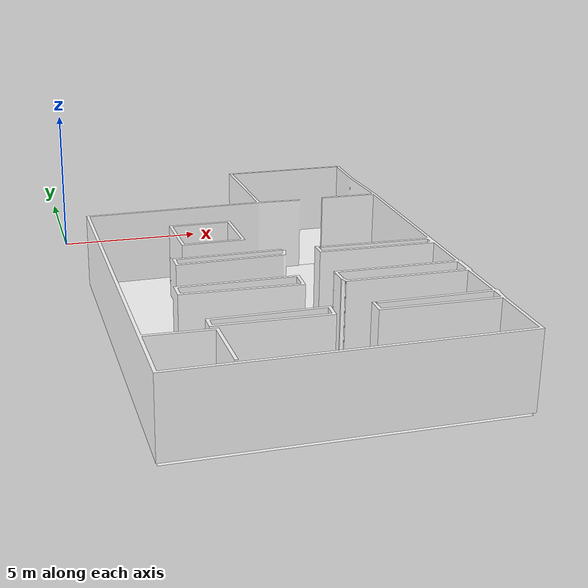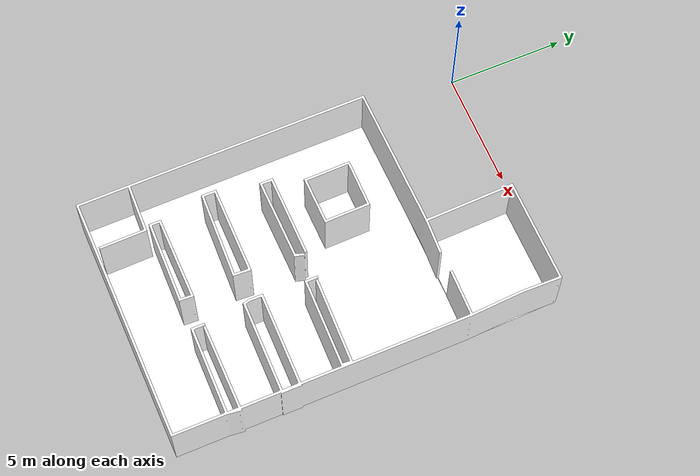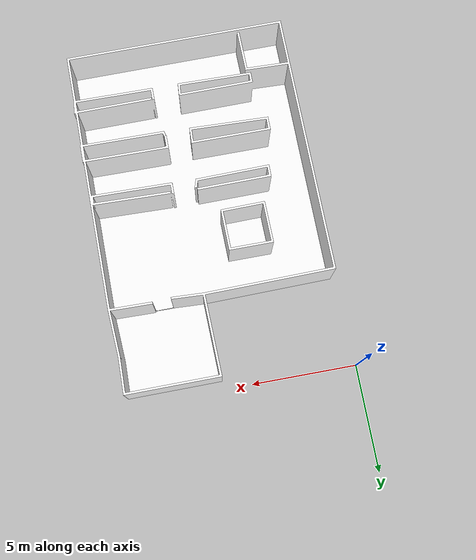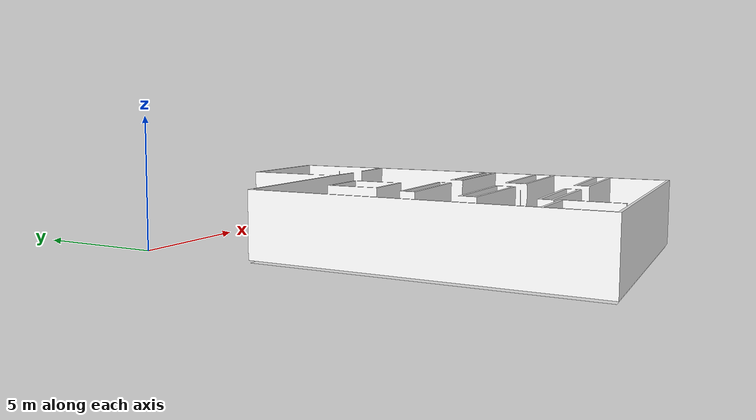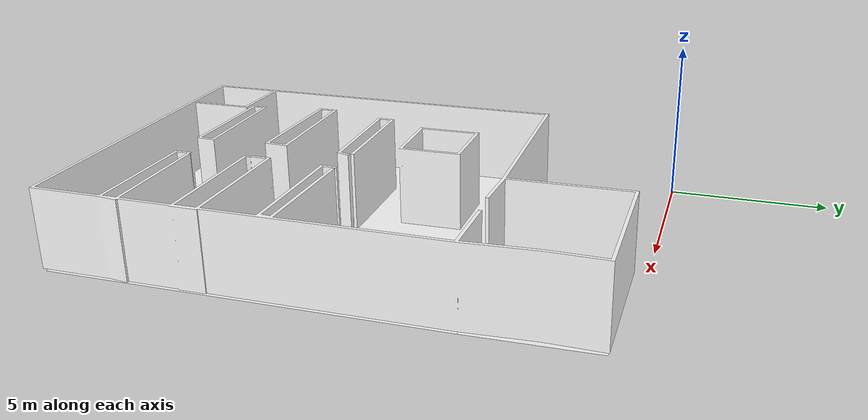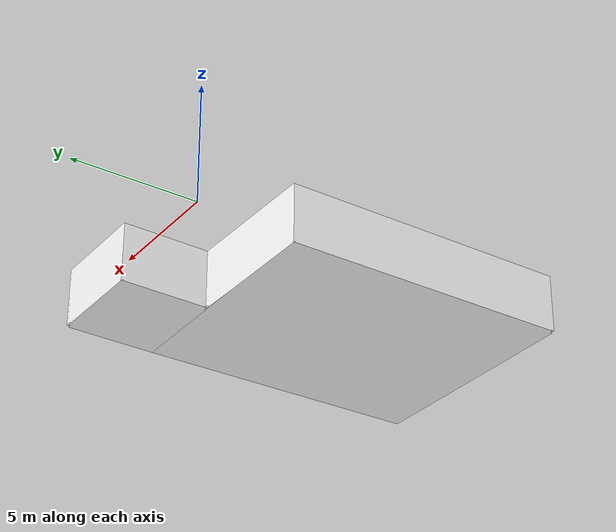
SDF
<?xml version='1.0' encoding='utf-8'?>
<sdf version="1.7">
  <model name="rmf_warehouseV3_Imagen">
    <static>true</static>
    <link name="floor_1">
      <visual name="visual">
        <geometry>
          <mesh>
            <uri>model://rmf_warehouseV3_Imagen/meshes/floor_1.obj</uri>
          </mesh>
        </geometry>
        <material>
          <diffuse>1.0 1.0 1.0</diffuse>
          <specular>0.1 0.1 0.1</specular>
          <pbr>
            <metal>
              <metalness>0.0</metalness>
              <albedo_map>model://rmf_warehouseV3_Imagen/meshes/blue_linoleum.png</albedo_map>
            </metal>
          </pbr>
          <script>
            <uri>model://rmf_warehouseV3_Imagen/meshes/</uri>
            <name>floor_1_Diffuse</name>
          </script>
        </material>
      </visual>
      <collision name="collision">
        <geometry>
          <mesh>
            <uri>model://rmf_warehouseV3_Imagen/meshes/floor_1.obj</uri>
          </mesh>
        </geometry>
        <surface>
          <contact>
            <collide_bitmask>0x01</collide_bitmask>
          </contact>
        </surface>
      </collision>
    </link>
    <link name="floor_2">
      <visual name="visual">
        <geometry>
          <mesh>
            <uri>model://rmf_warehouseV3_Imagen/meshes/floor_2.obj</uri>
          </mesh>
        </geometry>
        <material>
          <diffuse>1.0 1.0 1.0</diffuse>
          <specular>0.1 0.1 0.1</specular>
          <pbr>
            <metal>
              <metalness>0.0</metalness>
              <albedo_map>model://rmf_warehouseV3_Imagen/meshes/blue_linoleum.png</albedo_map>
            </metal>
          </pbr>
          <script>
            <uri>model://rmf_warehouseV3_Imagen/meshes/</uri>
            <name>floor_2_Diffuse</name>
          </script>
        </material>
      </visual>
      <collision name="collision">
        <geometry>
          <mesh>
            <uri>model://rmf_warehouseV3_Imagen/meshes/floor_2.obj</uri>
          </mesh>
        </geometry>
        <surface>
          <contact>
            <collide_bitmask>0x01</collide_bitmask>
          </contact>
        </surface>
      </collision>
    </link>
    <link name="wall_1">
      <visual name="wall_1">
        <geometry>
          <mesh>
            <uri>model://rmf_warehouseV3_Imagen/meshes/wall_1.obj</uri>
          </mesh>
        </geometry>
        <transparency>0.0</transparency>
        <material>
          <diffuse>1.0 1.0 1.0</diffuse>
          <specular>0.1 0.1 0.1</specular>
          <pbr>
            <metal>
              <metalness>0.0</metalness>
              <albedo_map>model://rmf_warehouseV3_Imagen/meshes/default.png</albedo_map>
            </metal>
          </pbr>
          <script>
            <uri>model://rmf_warehouseV3_Imagen/meshes/</uri>
            <name>wall_1_Diffuse</name>
          </script>
        </material>
      </visual>
      <collision name="collision">
        <geometry>
          <mesh>
            <uri>model://rmf_warehouseV3_Imagen/meshes/wall_1.obj</uri>
          </mesh>
        </geometry>
        <surface>
          <contact>
            <collide_bitmask>0x01</collide_bitmask>
          </contact>
        </surface>
      </collision>
      <pose>0.35589303330056543 -16.784283561195007 0 0 0 0</pose>
    </link>
  </model>
</sdf>
